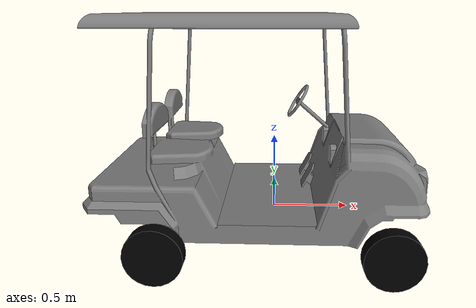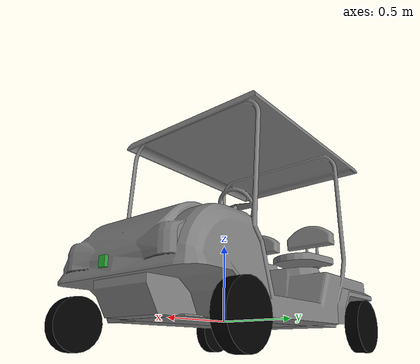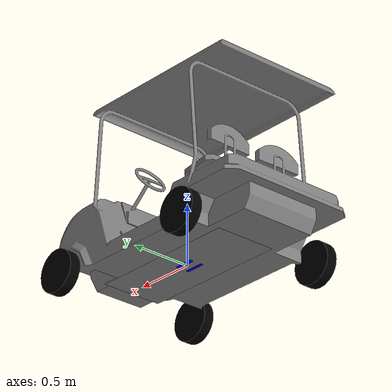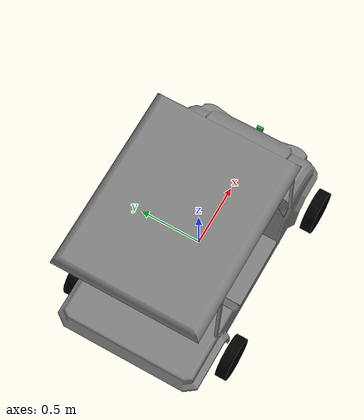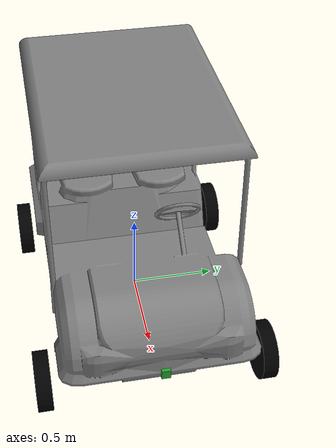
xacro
<?xml version="1.0"?>

<robot name="golfcart" xmlns:xacro="http://www.ros.org/wiki/xacro">
  <!-- Degree-to-radian conversions -->
  <xacro:property name="degrees_45" value="0.785398163"/>
  <xacro:property name="degrees_90" value="1.57079633"/>

  <!-- chassis_length is measured along the x axis, chassis_width
       along the y axis, and chassis_height along the z axis. -->
  <xacro:property name="chassis_length" value="1.258"/>
  <xacro:property name="chassis_width" value="0.5168"/>
  <xacro:property name="chassis_height" value="0.01"/>
  <xacro:property name="chassis_mass" value="2.788"/>

  <xacro:property name="battery_x_offset" value="0.055"/>
  <xacro:property name="battery_dist" value="0.065"/>
  <xacro:property name="battery_comp_depth" value="0.02"/>
  <xacro:property name="battery_comp_angle" value="0.34906585"/>
  <xacro:property name="battery_length" value="0.16"/>
  <xacro:property name="battery_width" value="0.047"/>
  <xacro:property name="battery_height" value="0.024"/>
  <xacro:property name="battery_mass" value="0.5025"/>

  <xacro:property name="hub_dia" value="0.09652"/>
  <xacro:property name="tire_dia" value="0.34605"/>
  <xacro:property name="tire_width" value="0.0889"/>
  <xacro:property name="hex_hub_depth" value="0.01445"/>
  <xacro:property name="wheel_mass" value="0.29"/>

  <xacro:property name="wheelbase" value="1.335"/>
  <xacro:property name="hex_hub_dist" value="1.365"/>
  <xacro:property name="axle_length" value="0.03"/>
  <xacro:property name="wheel_travel" value="0.084"/>
  <xacro:property name="shock_z_offset" value="0.0655"/>

  <xacro:property name="shock_eff_limit" value="12.5106"/>
  <xacro:property name="shock_vel_limit" value="1000"/>

  <xacro:property name="axle_eff_limit" value="5.12766"/>
  <xacro:property name="axle_vel_limit" value="244.8696"/>

  <!-- These constants are used to simulate a Traxxas 2056 servo operated at
       6 V. servo_stall_torque is measured in N m. servo_no_load_speed is
       measured in rad/s. -->
  <xacro:property name="servo_stall_torque" value="0.5649"/>
  <xacro:property name="servo_no_load_speed" value="4.553"/>

  <material name="battery_mat">
    <color rgba="0 0 1 1"/>
  </material>
  <material name="chassis_mat">
    <color rgba="0.5 0.5 0.5 1"/>
  </material>
  <material name="tire_mat">
    <color rgba="0 0 0 1"/>
  </material>

  <!-- Null inertial element. This is needed to make the model work with
       Gazebo. -->
  <xacro:macro name="null_inertial">
    <inertial>
      <mass value="0.001"/>
      <inertia ixx="0.001" ixy="0" ixz="0" iyy="0.001" iyz="0" izz="0.001"/>
    </inertial>
  </xacro:macro>

  <!-- Inertia of a solid cuboid. Width is measured along the x axis, depth
       along the y axis, and height along the z axis. -->
  <xacro:macro name="solid_cuboid_inertial"
               params="width depth height mass *origin">
    <inertial>
      <xacro:insert_block name="origin"/>
      <mass value="${mass}"/>
      <inertia ixx="${mass * (depth * depth + height * height) / 12}"
               ixy="0" ixz="0"
               iyy="${mass * (width * width + height * height) / 12}"
               iyz="0"
               izz="${mass * (width * width + depth * depth) / 12}"/>
    </inertial>
  </xacro:macro>

  <xacro:macro name="thick_walled_tube_inertial"
               params="inner_rad outer_rad height mass">
    <inertial>
      <mass value="${mass}"/>
      <inertia ixx="${(1 / 12) * mass * (3 * (inner_rad * inner_rad +
                    outer_rad * outer_rad) + height * height)}"
               ixy="0" ixz="0"
               iyy="${(1 / 12) * mass * (3 * (inner_rad * inner_rad +
                    outer_rad * outer_rad) + height * height)}"
               iyz="0"
               izz="${mass * (inner_rad * inner_rad +
                    outer_rad * outer_rad) / 2}"/>
    </inertial>
  </xacro:macro>

  <!-- Battery -->
  <xacro:macro name="battery" params="prefix reflect">
    <joint name="chassis_to_${prefix}_battery" type="fixed">
      <parent link="chassis"/>
      <child link="${prefix}_battery_offset"/>
      <origin xyz="${battery_x_offset - battery_length / 2}
                   ${reflect * battery_dist / 2}
                   0"
              rpy="${reflect * battery_comp_angle} 0 0"/>
    </joint>

    <link name="${prefix}_battery_offset">
      <xacro:null_inertial/>
    </link>

    <joint name="offset_to_${prefix}_battery" type="fixed">
      <parent link="${prefix}_battery_offset"/>
      <child link="${prefix}_battery"/>
      <origin xyz="0
                   ${reflect * battery_width / 2}
                   ${(battery_height / 2) - battery_comp_depth}"/>
    </joint>

    <link name="${prefix}_battery">
      <visual>
        <geometry>
          <box size="${battery_length} ${battery_width} ${battery_height}"/>
        </geometry>
        <material name="battery_mat"/>
      </visual>

      <collision>
        <geometry>
          <box size="${battery_length} ${battery_width} ${battery_height}"/>
        </geometry>
      </collision>

      <xacro:solid_cuboid_inertial
          width="${battery_length}" depth="${battery_width}"
          height="${battery_height}" mass="${battery_mass}">
        <origin/>
      </xacro:solid_cuboid_inertial>
    </link>

    <gazebo reference="${prefix}_battery">
      <material>Gazebo/Blue</material>
    </gazebo>
  </xacro:macro>

  <!-- Shock absorber -->
  <xacro:macro name="shock"
               params="lr_prefix fr_prefix lr_reflect fr_reflect child">
    <joint name="${lr_prefix}_${fr_prefix}_shock" type="prismatic">
      <parent link="chassis"/>
      <child link="${child}"/>

      <origin xyz="${fr_reflect * wheelbase / 2}
                   ${lr_reflect * ((hex_hub_dist / 2) - axle_length)}
                   ${(wheel_travel / 2) - shock_z_offset}"/>
      <axis xyz="0 0 -1"/>
      <limit lower="${-wheel_travel / 2}" upper="${wheel_travel / 2}"
             effort="${shock_eff_limit}" velocity="${shock_vel_limit}"/>
    </joint>
    <transmission name="${lr_prefix}_${fr_prefix}_shock_trans">
      <type>transmission_interface/SimpleTransmission</type>
      <joint name="${lr_prefix}_${fr_prefix}_shock">
        <hardwareInterface>EffortJointInterface</hardwareInterface>
      </joint>
      <actuator name="${lr_prefix}_${fr_prefix}_shock_act">
        <!-- This hardwareInterface element exists for compatibility
             with ROS Hydro. -->
        <hardwareInterface>EffortJointInterface</hardwareInterface>
        <mechanicalReduction>1</mechanicalReduction>
      </actuator>
    </transmission>
  </xacro:macro>

  <!-- The "wheel" macro defines an axle carrier, axle, and wheel. -->
  <xacro:macro name="wheel" params="lr_prefix fr_prefix lr_reflect">
    <link name="${lr_prefix}_${fr_prefix}_axle_carrier">
      <xacro:null_inertial/>
    </link>

    <!-- The left and right axles have the same axis so that identical
         rotation values cause the wheels to rotate in the same direction. -->
    <joint name="${lr_prefix}_${fr_prefix}_axle" type="continuous">
      <parent link="${lr_prefix}_${fr_prefix}_axle_carrier"/>
      <child link="${lr_prefix}_${fr_prefix}_wheel"/>
      <origin rpy="${degrees_90} 0 0"/>
      <axis xyz="0 0 -1"/>

    </joint>
    <transmission name="${lr_prefix}_${fr_prefix}_axle_trans">
      <type>transmission_interface/SimpleTransmission</type>
      <joint name="${lr_prefix}_${fr_prefix}_axle">
        <hardwareInterface>EffortJointInterface</hardwareInterface>
      </joint>
      <actuator name="${lr_prefix}_${fr_prefix}_axle_act">
        <!-- This hardwareInterface element exists for compatibility
             with ROS Hydro. -->
        <hardwareInterface>EffortJointInterface</hardwareInterface>
        <mechanicalReduction>1</mechanicalReduction>
      </actuator>
    </transmission>

    <link name="${lr_prefix}_${fr_prefix}_wheel">w
      <visual>t.p
        <origin xyz="0
                     ${lr_reflect * (axle_length - (tire_width /
                     2 - hex_hub_depth))}
                     0"/>
        <geometry>
          <cylinder radius="${tire_dia / 2}" length="${tire_width}"/>
        </geometry>
        <material name="tire_mat"/>
      </visual>

      <collision>
        <origin xyz="0
                     ${lr_reflect * (axle_length - (tire_width /
                     2 - hex_hub_depth))}
                     0"/>
        <geometry>
          <cylinder radius="${tire_dia / 2}" length="${tire_width}"/>
        </geometry>
      </collision>

      <xacro:thick_walled_tube_inertial
          inner_rad="${hub_dia / 2}" outer_rad="${tire_dia / 2}"
          height="${tire_width}" mass="${wheel_mass}"/>
    </link>

    <gazebo reference="${lr_prefix}_${fr_prefix}_wheel">
      <material>Gazebo/Black</material>
    </gazebo>
  </xacro:macro>

  <!-- Front wheel -->
  <xacro:macro name="front_wheel"
               params="lr_prefix fr_prefix lr_reflect fr_reflect">
    <xacro:shock lr_prefix="${lr_prefix}" fr_prefix="${fr_prefix}"
                 lr_reflect="${lr_reflect}" fr_reflect="${fr_reflect}"
                 child="${lr_prefix}_steering_link"/>

    <link name="${lr_prefix}_steering_link">
      <xacro:null_inertial/>
    </link>

    <joint name="${lr_prefix}_steering_joint" type="revolute">
      <parent link="${lr_prefix}_steering_link"/>
      <child link="${lr_prefix}_${fr_prefix}_axle_carrier"/>
      <axis xyz="0 0 1"/>
      <limit lower="${-degrees_45}" upper="${degrees_45}"
             effort="${servo_stall_torque}" velocity="${servo_no_load_speed}"/>
    </joint>
    <transmission name="${lr_prefix}_steering_trans">
      <type>transmission_interface/SimpleTransmission</type>
      <joint name="${lr_prefix}_steering_joint">
        <hardwareInterface>EffortJointInterface</hardwareInterface>
      </joint>
      <actuator name="${lr_prefix}_steering_act">
        <!-- This hardwareInterface element exists for compatibility
             with ROS Hydro. -->
        <hardwareInterface>EffortJointInterface</hardwareInterface>
        <mechanicalReduction>1</mechanicalReduction>
      </actuator>
    </transmission>

    <xacro:wheel lr_prefix="${lr_prefix}" fr_prefix="${fr_prefix}"
                 lr_reflect="${lr_reflect}"/>
  </xacro:macro>

  <!-- Rear wheel -->
  <xacro:macro name="rear_wheel"
               params="lr_prefix fr_prefix lr_reflect fr_reflect">
    <xacro:shock lr_prefix="${lr_prefix}" fr_prefix="${fr_prefix}"
                 lr_reflect="${lr_reflect}" fr_reflect="${fr_reflect}"
                 child="${lr_prefix}_${fr_prefix}_axle_carrier"/>
    <xacro:wheel lr_prefix="${lr_prefix}" fr_prefix="${fr_prefix}"
                 lr_reflect="${lr_reflect}"/>
  </xacro:macro>

  <!-- base_link must have geometry so that its axes can be displayed in
       rviz. -->
  <link name="base_link">
    <visual>
      <origin rpy="0 0 1.57079633" xyz="1.2 -1.035 -0.2"/>
      <geometry>
        <mesh filename="package://golfcart_description/meshes/GolfCart.stl"/>
      </geometry>
      <material name="chassis_mat"/>
    </visual>
    <collision>
      <origin rpy="0 0 1.57079633" xyz="1.2 -1.035 -0.2"/>
      <geometry>
        <mesh filename="package://golfcart_description/meshes/GolfCart.stl"/>
      </geometry>
    </collision>
  </link>
  <gazebo reference="base_link">
    <material>Gazebo/Grey</material>
  </gazebo>

  <joint name="laser_joint" type="fixed">
    <origin xyz="0.95 0.00 0.25" rpy="3.14159 0 0" />
    <parent link="base_link" />
    <child link="laser" />
  </joint>

  <link name="laser">
    <visual>
      <geometry>
        <box size="0.02 0.05 0.06" />
      </geometry>
      <material name="Green" />
    </visual>
    <inertial>
      <mass value="0.000001" />
      <origin xyz="0 0 0" />
      <inertia ixx="0.0001" ixy="0.0" ixz="0.0"
               iyy="0.0001" iyz="0.0"
               izz="0.0001" />
    </inertial>
  </link>

  <!-- Chassis -->
  <link name="chassis">
    <visual>
      <origin xyz="0 0 ${-chassis_height / 2}"/>
      <geometry>
        <box size="${chassis_length} ${chassis_width} ${chassis_height}"/>

      </geometry>
      <material name="chassis_mat"/>
    </visual>

    <collision>
      <origin xyz="0 0 ${-chassis_height / 2}"/>
      <geometry>
        <box size="${chassis_length} ${chassis_width} ${chassis_height}"/>
      </geometry>
    </collision>

    <xacro:solid_cuboid_inertial
        width="${chassis_length}" depth="${chassis_width}"
        height="${chassis_height}" mass="${chassis_mass}">
      <origin xyz="0 0 ${-chassis_height / 2}"/>
    </xacro:solid_cuboid_inertial>
  </link>
  <gazebo reference="chassis">
    <material>Gazebo/Grey</material>
  </gazebo>

  <joint name="base_link_to_chassis" type="fixed">
    <parent link="base_link"/>
    <child link="chassis"/>
  </joint>

  <!-- Batteries -->
  <xacro:battery prefix="left" reflect="1"/>
  <xacro:battery prefix="right" reflect="-1"/>

  <!-- Wheels -->
  <xacro:front_wheel lr_prefix="left" fr_prefix="front"
                     lr_reflect="1" fr_reflect="1"/>
  <xacro:front_wheel lr_prefix="right" fr_prefix="front"
                     lr_reflect="-1" fr_reflect="1"/>
  <xacro:rear_wheel lr_prefix="left" fr_prefix="rear"
                    lr_reflect="1" fr_reflect="-1"/>
  <xacro:rear_wheel lr_prefix="right" fr_prefix="rear"
                    lr_reflect="-1" fr_reflect="-1"/>
  <gazebo reference="laser">
    <sensor type="ray" name="front_laser">
      <pose>0 0 0 0 0 0</pose>
      <visualize>true</visualize>
      <update_rate>40</update_rate>
      <ray>
        <scan>
          <horizontal>
            <samples>720</samples>
            <resolution>0.1</resolution>
            <min_angle>-0.970796</min_angle>
            <max_angle>0.970796</max_angle>
          </horizontal>
        </scan>
        <range>
          <min>0.1</min>
          <max>20.0</max>
          <resolution>0.01</resolution>
        </range>
        <noise>
          <type>gaussian</type>
          <mean>0.0</mean>
          <stddev>0.01</stddev>
        </noise>
      </ray>
      <plugin name="laser_controller" filename="libgazebo_ros_laser.so">
        <topicName>/scan</topicName>
        <frameName>/laser</frameName>
      </plugin>
    </sensor>
  </gazebo>
  <gazebo>
    <plugin name="gazebo_ros_control" filename="libgazebo_ros_control.so"/>
    <plugin name="em_3905" filename="libgazebo_ros_p3d.so">
      <bodyName>base_link</bodyName>
      <topicName>odom</topicName>
      <updateRate>10.0</updateRate>
    </plugin>
  </gazebo>
</robot>
